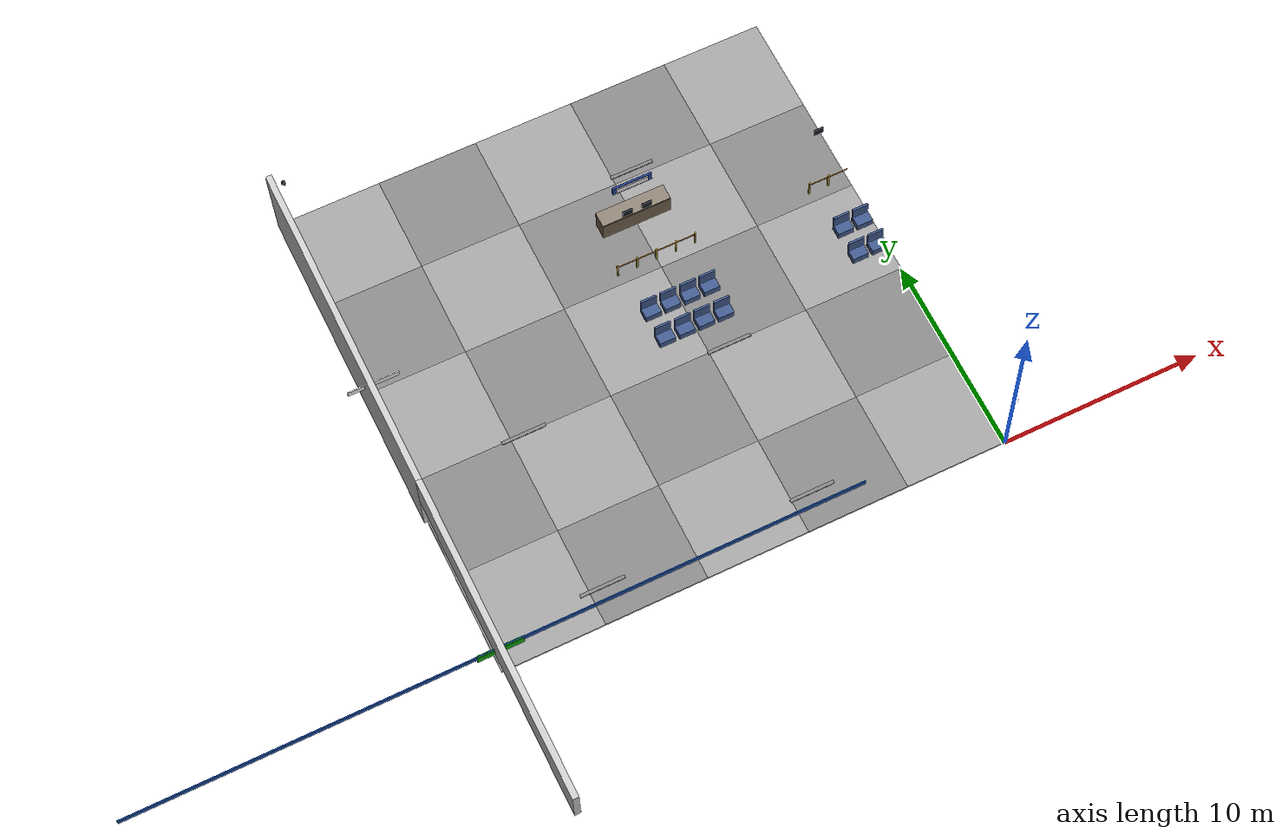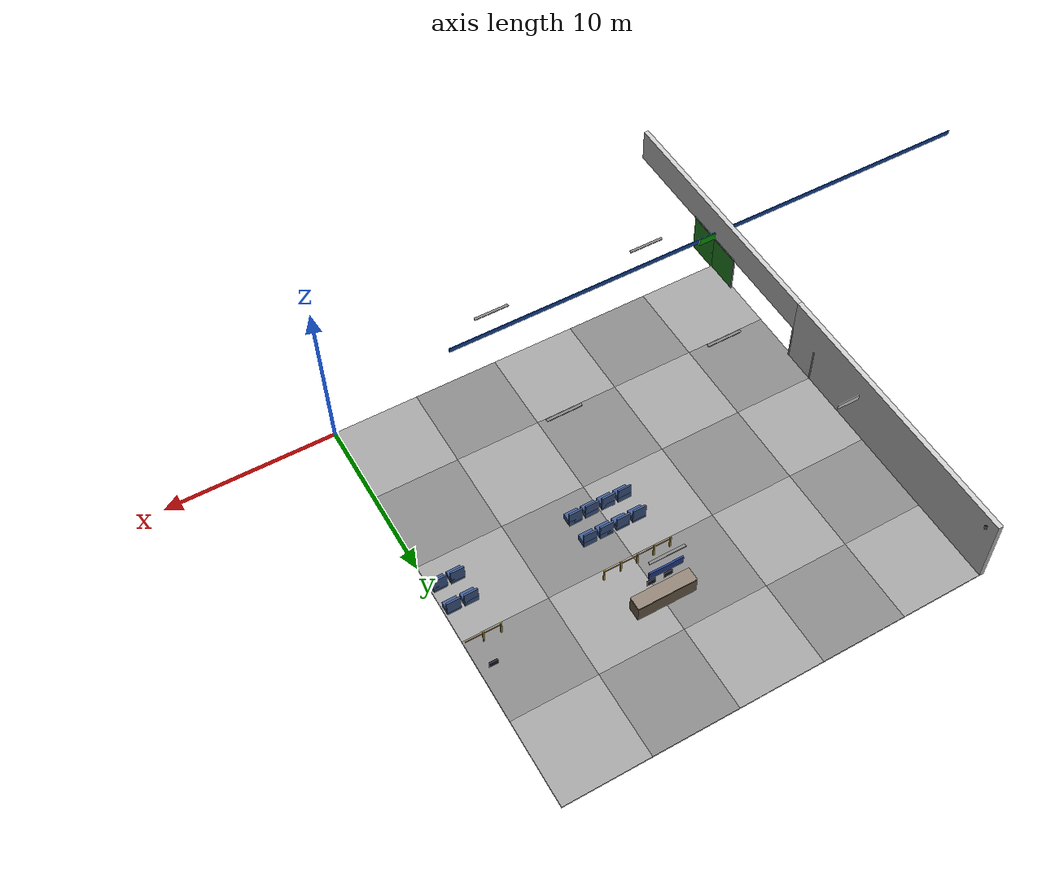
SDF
<sdf version="1.10">
 <world name="my_world">
  <model name="tile_0_5">
   <static>true</static>
   <pose>-22.5 2.5 0.05 0 0 0</pose>
   <link name="link">
    <collision name="col">
     <geometry><box><size>5 5 0.1</size></box></geometry>
     <surface><friction><ode><mu>0.8</mu><mu2>0.8</mu2></ode></friction></surface>
    </collision>
    <visual name="vis">
     <geometry><box><size>5 5 0.1</size></box></geometry>
     <material><ambient>0.62 0.62 0.62 1</ambient><diffuse>0.62 0.62 0.62 1</diffuse></material>
    </visual>
   </link>
  </model>
  <model name="tile_0_6">
   <static>true</static>
   <pose>-22.5 7.5 0.05 0 0 0</pose>
   <link name="link">
    <collision name="col">
     <geometry><box><size>5 5 0.1</size></box></geometry>
     <surface><friction><ode><mu>0.8</mu><mu2>0.8</mu2></ode></friction></surface>
    </collision>
    <visual name="vis">
     <geometry><box><size>5 5 0.1</size></box></geometry>
     <material><ambient>0.52 0.52 0.52 1</ambient><diffuse>0.52 0.52 0.52 1</diffuse></material>
    </visual>
   </link>
  </model>
  <model name="tile_0_7">
   <static>true</static>
   <pose>-22.5 12.5 0.05 0 0 0</pose>
   <link name="link">
    <collision name="col">
     <geometry><box><size>5 5 0.1</size></box></geometry>
     <surface><friction><ode><mu>0.8</mu><mu2>0.8</mu2></ode></friction></surface>
    </collision>
    <visual name="vis">
     <geometry><box><size>5 5 0.1</size></box></geometry>
     <material><ambient>0.62 0.62 0.62 1</ambient><diffuse>0.62 0.62 0.62 1</diffuse></material>
    </visual>
   </link>
  </model>
  <model name="tile_0_8">
   <static>true</static>
   <pose>-22.5 17.5 0.05 0 0 0</pose>
   <link name="link">
    <collision name="col">
     <geometry><box><size>5 5 0.1</size></box></geometry>
     <surface><friction><ode><mu>0.8</mu><mu2>0.8</mu2></ode></friction></surface>
    </collision>
    <visual name="vis">
     <geometry><box><size>5 5 0.1</size></box></geometry>
     <material><ambient>0.52 0.52 0.52 1</ambient><diffuse>0.52 0.52 0.52 1</diffuse></material>
    </visual>
   </link>
  </model>
  <model name="tile_0_9">
   <static>true</static>
   <pose>-22.5 22.5 0.05 0 0 0</pose>
   <link name="link">
    <collision name="col">
     <geometry><box><size>5 5 0.1</size></box></geometry>
     <surface><friction><ode><mu>0.8</mu><mu2>0.8</mu2></ode></friction></surface>
    </collision>
    <visual name="vis">
     <geometry><box><size>5 5 0.1</size></box></geometry>
     <material><ambient>0.62 0.62 0.62 1</ambient><diffuse>0.62 0.62 0.62 1</diffuse></material>
    </visual>
   </link>
  </model>
  <model name="tile_1_5">
   <static>true</static>
   <pose>-17.5 2.5 0.05 0 0 0</pose>
   <link name="link">
    <collision name="col">
     <geometry><box><size>5 5 0.1</size></box></geometry>
     <surface><friction><ode><mu>0.8</mu><mu2>0.8</mu2></ode></friction></surface>
    </collision>
    <visual name="vis">
     <geometry><box><size>5 5 0.1</size></box></geometry>
     <material><ambient>0.52 0.52 0.52 1</ambient><diffuse>0.52 0.52 0.52 1</diffuse></material>
    </visual>
   </link>
  </model>
  <model name="tile_1_6">
   <static>true</static>
   <pose>-17.5 7.5 0.05 0 0 0</pose>
   <link name="link">
    <collision name="col">
     <geometry><box><size>5 5 0.1</size></box></geometry>
     <surface><friction><ode><mu>0.8</mu><mu2>0.8</mu2></ode></friction></surface>
    </collision>
    <visual name="vis">
     <geometry><box><size>5 5 0.1</size></box></geometry>
     <material><ambient>0.62 0.62 0.62 1</ambient><diffuse>0.62 0.62 0.62 1</diffuse></material>
    </visual>
   </link>
  </model>
  <model name="tile_1_7">
   <static>true</static>
   <pose>-17.5 12.5 0.05 0 0 0</pose>
   <link name="link">
    <collision name="col">
     <geometry><box><size>5 5 0.1</size></box></geometry>
     <surface><friction><ode><mu>0.8</mu><mu2>0.8</mu2></ode></friction></surface>
    </collision>
    <visual name="vis">
     <geometry><box><size>5 5 0.1</size></box></geometry>
     <material><ambient>0.52 0.52 0.52 1</ambient><diffuse>0.52 0.52 0.52 1</diffuse></material>
    </visual>
   </link>
  </model>
  <model name="tile_1_8">
   <static>true</static>
   <pose>-17.5 17.5 0.05 0 0 0</pose>
   <link name="link">
    <collision name="col">
     <geometry><box><size>5 5 0.1</size></box></geometry>
     <surface><friction><ode><mu>0.8</mu><mu2>0.8</mu2></ode></friction></surface>
    </collision>
    <visual name="vis">
     <geometry><box><size>5 5 0.1</size></box></geometry>
     <material><ambient>0.62 0.62 0.62 1</ambient><diffuse>0.62 0.62 0.62 1</diffuse></material>
    </visual>
   </link>
  </model>
  <model name="tile_1_9">
   <static>true</static>
   <pose>-17.5 22.5 0.05 0 0 0</pose>
   <link name="link">
    <collision name="col">
     <geometry><box><size>5 5 0.1</size></box></geometry>
     <surface><friction><ode><mu>0.8</mu><mu2>0.8</mu2></ode></friction></surface>
    </collision>
    <visual name="vis">
     <geometry><box><size>5 5 0.1</size></box></geometry>
     <material><ambient>0.52 0.52 0.52 1</ambient><diffuse>0.52 0.52 0.52 1</diffuse></material>
    </visual>
   </link>
  </model>
  <model name="tile_2_5">
   <static>true</static>
   <pose>-12.5 2.5 0.05 0 0 0</pose>
   <link name="link">
    <collision name="col">
     <geometry><box><size>5 5 0.1</size></box></geometry>
     <surface><friction><ode><mu>0.8</mu><mu2>0.8</mu2></ode></friction></surface>
    </collision>
    <visual name="vis">
     <geometry><box><size>5 5 0.1</size></box></geometry>
     <material><ambient>0.62 0.62 0.62 1</ambient><diffuse>0.62 0.62 0.62 1</diffuse></material>
    </visual>
   </link>
  </model>
  <model name="tile_2_6">
   <static>true</static>
   <pose>-12.5 7.5 0.05 0 0 0</pose>
   <link name="link">
    <collision name="col">
     <geometry><box><size>5 5 0.1</size></box></geometry>
     <surface><friction><ode><mu>0.8</mu><mu2>0.8</mu2></ode></friction></surface>
    </collision>
    <visual name="vis">
     <geometry><box><size>5 5 0.1</size></box></geometry>
     <material><ambient>0.52 0.52 0.52 1</ambient><diffuse>0.52 0.52 0.52 1</diffuse></material>
    </visual>
   </link>
  </model>
  <model name="tile_2_7">
   <static>true</static>
   <pose>-12.5 12.5 0.05 0 0 0</pose>
   <link name="link">
    <collision name="col">
     <geometry><box><size>5 5 0.1</size></box></geometry>
     <surface><friction><ode><mu>0.8</mu><mu2>0.8</mu2></ode></friction></surface>
    </collision>
    <visual name="vis">
     <geometry><box><size>5 5 0.1</size></box></geometry>
     <material><ambient>0.62 0.62 0.62 1</ambient><diffuse>0.62 0.62 0.62 1</diffuse></material>
    </visual>
   </link>
  </model>
  <model name="tile_2_8">
   <static>true</static>
   <pose>-12.5 17.5 0.05 0 0 0</pose>
   <link name="link">
    <collision name="col">
     <geometry><box><size>5 5 0.1</size></box></geometry>
     <surface><friction><ode><mu>0.8</mu><mu2>0.8</mu2></ode></friction></surface>
    </collision>
    <visual name="vis">
     <geometry><box><size>5 5 0.1</size></box></geometry>
     <material><ambient>0.52 0.52 0.52 1</ambient><diffuse>0.52 0.52 0.52 1</diffuse></material>
    </visual>
   </link>
  </model>
  <model name="tile_2_9">
   <static>true</static>
   <pose>-12.5 22.5 0.05 0 0 0</pose>
   <link name="link">
    <collision name="col">
     <geometry><box><size>5 5 0.1</size></box></geometry>
     <surface><friction><ode><mu>0.8</mu><mu2>0.8</mu2></ode></friction></surface>
    </collision>
    <visual name="vis">
     <geometry><box><size>5 5 0.1</size></box></geometry>
     <material><ambient>0.62 0.62 0.62 1</ambient><diffuse>0.62 0.62 0.62 1</diffuse></material>
    </visual>
   </link>
  </model>
  <model name="tile_3_5">
   <static>true</static>
   <pose>-7.5 2.5 0.05 0 0 0</pose>
   <link name="link">
    <collision name="col">
     <geometry><box><size>5 5 0.1</size></box></geometry>
     <surface><friction><ode><mu>0.8</mu><mu2>0.8</mu2></ode></friction></surface>
    </collision>
    <visual name="vis">
     <geometry><box><size>5 5 0.1</size></box></geometry>
     <material><ambient>0.52 0.52 0.52 1</ambient><diffuse>0.52 0.52 0.52 1</diffuse></material>
    </visual>
   </link>
  </model>
  <model name="tile_3_6">
   <static>true</static>
   <pose>-7.5 7.5 0.05 0 0 0</pose>
   <link name="link">
    <collision name="col">
     <geometry><box><size>5 5 0.1</size></box></geometry>
     <surface><friction><ode><mu>0.8</mu><mu2>0.8</mu2></ode></friction></surface>
    </collision>
    <visual name="vis">
     <geometry><box><size>5 5 0.1</size></box></geometry>
     <material><ambient>0.62 0.62 0.62 1</ambient><diffuse>0.62 0.62 0.62 1</diffuse></material>
    </visual>
   </link>
  </model>
  <model name="tile_3_7">
   <static>true</static>
   <pose>-7.5 12.5 0.05 0 0 0</pose>
   <link name="link">
    <collision name="col">
     <geometry><box><size>5 5 0.1</size></box></geometry>
     <surface><friction><ode><mu>0.8</mu><mu2>0.8</mu2></ode></friction></surface>
    </collision>
    <visual name="vis">
     <geometry><box><size>5 5 0.1</size></box></geometry>
     <material><ambient>0.52 0.52 0.52 1</ambient><diffuse>0.52 0.52 0.52 1</diffuse></material>
    </visual>
   </link>
  </model>
  <model name="tile_3_8">
   <static>true</static>
   <pose>-7.5 17.5 0.05 0 0 0</pose>
   <link name="link">
    <collision name="col">
     <geometry><box><size>5 5 0.1</size></box></geometry>
     <surface><friction><ode><mu>0.8</mu><mu2>0.8</mu2></ode></friction></surface>
    </collision>
    <visual name="vis">
     <geometry><box><size>5 5 0.1</size></box></geometry>
     <material><ambient>0.62 0.62 0.62 1</ambient><diffuse>0.62 0.62 0.62 1</diffuse></material>
    </visual>
   </link>
  </model>
  <model name="tile_3_9">
   <static>true</static>
   <pose>-7.5 22.5 0.05 0 0 0</pose>
   <link name="link">
    <collision name="col">
     <geometry><box><size>5 5 0.1</size></box></geometry>
     <surface><friction><ode><mu>0.8</mu><mu2>0.8</mu2></ode></friction></surface>
    </collision>
    <visual name="vis">
     <geometry><box><size>5 5 0.1</size></box></geometry>
     <material><ambient>0.52 0.52 0.52 1</ambient><diffuse>0.52 0.52 0.52 1</diffuse></material>
    </visual>
   </link>
  </model>
  <model name="tile_4_5">
   <static>true</static>
   <pose>-2.5 2.5 0.05 0 0 0</pose>
   <link name="link">
    <collision name="col">
     <geometry><box><size>5 5 0.1</size></box></geometry>
     <surface><friction><ode><mu>0.8</mu><mu2>0.8</mu2></ode></friction></surface>
    </collision>
    <visual name="vis">
     <geometry><box><size>5 5 0.1</size></box></geometry>
     <material><ambient>0.62 0.62 0.62 1</ambient><diffuse>0.62 0.62 0.62 1</diffuse></material>
    </visual>
   </link>
  </model>
  <model name="tile_4_6">
   <static>true</static>
   <pose>-2.5 7.5 0.05 0 0 0</pose>
   <link name="link">
    <collision name="col">
     <geometry><box><size>5 5 0.1</size></box></geometry>
     <surface><friction><ode><mu>0.8</mu><mu2>0.8</mu2></ode></friction></surface>
    </collision>
    <visual name="vis">
     <geometry><box><size>5 5 0.1</size></box></geometry>
     <material><ambient>0.52 0.52 0.52 1</ambient><diffuse>0.52 0.52 0.52 1</diffuse></material>
    </visual>
   </link>
  </model>
  <model name="tile_4_7">
   <static>true</static>
   <pose>-2.5 12.5 0.05 0 0 0</pose>
   <link name="link">
    <collision name="col">
     <geometry><box><size>5 5 0.1</size></box></geometry>
     <surface><friction><ode><mu>0.8</mu><mu2>0.8</mu2></ode></friction></surface>
    </collision>
    <visual name="vis">
     <geometry><box><size>5 5 0.1</size></box></geometry>
     <material><ambient>0.62 0.62 0.62 1</ambient><diffuse>0.62 0.62 0.62 1</diffuse></material>
    </visual>
   </link>
  </model>
  <model name="tile_4_8">
   <static>true</static>
   <pose>-2.5 17.5 0.05 0 0 0</pose>
   <link name="link">
    <collision name="col">
     <geometry><box><size>5 5 0.1</size></box></geometry>
     <surface><friction><ode><mu>0.8</mu><mu2>0.8</mu2></ode></friction></surface>
    </collision>
    <visual name="vis">
     <geometry><box><size>5 5 0.1</size></box></geometry>
     <material><ambient>0.52 0.52 0.52 1</ambient><diffuse>0.52 0.52 0.52 1</diffuse></material>
    </visual>
   </link>
  </model>
  <model name="tile_4_9">
   <static>true</static>
   <pose>-2.5 22.5 0.05 0 0 0</pose>
   <link name="link">
    <collision name="col">
     <geometry><box><size>5 5 0.1</size></box></geometry>
     <surface><friction><ode><mu>0.8</mu><mu2>0.8</mu2></ode></friction></surface>
    </collision>
    <visual name="vis">
     <geometry><box><size>5 5 0.1</size></box></geometry>
     <material><ambient>0.62 0.62 0.62 1</ambient><diffuse>0.62 0.62 0.62 1</diffuse></material>
    </visual>
   </link>
  </model>
  <model name="wall_west_n">
   <static>true</static>
   <pose>-25 16.5 2.25 0 0 0</pose>
   <link name="link">
    <collision name="col"><geometry><box><size>0.3 17 4.5</size></box></geometry></collision>
    <visual name="vis">
     <geometry><box><size>0.3 17 4.5</size></box></geometry>
     <material><ambient>0.78 0.78 0.78 1</ambient><diffuse>0.78 0.78 0.78 1</diffuse></material>
    </visual>
   </link>
  </model>
  <model name="wall_west_top">
   <static>true</static>
   <pose>-25 0 3.45 0 0 0</pose>
   <link name="link">
    <collision name="col"><geometry><box><size>0.3 16 2.1</size></box></geometry></collision>
    <visual name="vis">
     <geometry><box><size>0.3 16 2.1</size></box></geometry>
     <material><ambient>0.78 0.78 0.78 1</ambient><diffuse>0.78 0.78 0.78 1</diffuse></material>
    </visual>
   </link>
  </model>
  <model name="exit_west_door_l">
   <static>true</static>
   <pose>-24.87 -1.0 1.2 0 0 0</pose>
   <link name="link">
    <collision name="col"><geometry><box><size>0.06 2.0 2.4</size></box></geometry></collision>
    <visual name="vis">
     <geometry><box><size>0.06 2.0 2.4</size></box></geometry>
     <material><ambient>0.15 0.55 0.15 1</ambient><diffuse>0.15 0.55 0.15 1</diffuse></material>
    </visual>
   </link>
  </model>
  <model name="exit_west_door_r">
   <static>true</static>
   <pose>-24.87 1.0 1.2 0 0 0</pose>
   <link name="link">
    <collision name="col"><geometry><box><size>0.06 2.0 2.4</size></box></geometry></collision>
    <visual name="vis">
     <geometry><box><size>0.06 2.0 2.4</size></box></geometry>
     <material><ambient>0.15 0.55 0.15 1</ambient><diffuse>0.15 0.55 0.15 1</diffuse></material>
    </visual>
   </link>
  </model>
  <model name="exit_west_handle_l">
   <static>true</static>
   <pose>-24.87 -0.1 1.1 0 0 0</pose>
   <link name="link">
    <visual name="vis">
     <geometry><box><size>0.08 0.06 0.06</size></box></geometry>
     <material><ambient>0.7 0.6 0.1 1</ambient><diffuse>0.7 0.6 0.1 1</diffuse></material>
    </visual>
   </link>
  </model>
  <model name="exit_west_handle_r">
   <static>true</static>
   <pose>-24.87 0.1 1.1 0 0 0</pose>
   <link name="link">
    <visual name="vis">
     <geometry><box><size>0.08 0.06 0.06</size></box></geometry>
     <material><ambient>0.7 0.6 0.1 1</ambient><diffuse>0.7 0.6 0.1 1</diffuse></material>
    </visual>
   </link>
  </model>
  <model name="exit_west_sign">
   <static>true</static>
   <pose>-24.87 0 2.7 0 0 0</pose>
   <link name="link">
    <visual name="vis">
     <geometry><box><size>2.2 0.12 0.45</size></box></geometry>
     <material><ambient>0.05 0.65 0.05 1</ambient><diffuse>0.05 0.65 0.05 1</diffuse></material>
    </visual>
   </link>
  </model>
  <model name="exit_west_sign_txt">
   <static>true</static>
   <pose>-24.87 0 2.7 0 0 0</pose>
   <link name="link">
    <visual name="vis">
     <geometry><box><size>1.8 0.05 0.28</size></box></geometry>
     <material><ambient>0.92 0.92 0.92 1</ambient><diffuse>0.92 0.92 0.92 1</diffuse></material>
    </visual>
   </link>
  </model>
  <model name="exit_west_frame_r">
   <static>true</static>
   <pose>-24.87 2.05 1.2 0 0 0</pose>
   <link name="link">
    <collision name="col"><geometry><box><size>0.06 0.1 2.4</size></box></geometry></collision>
    <visual name="vis">
     <geometry><box><size>0.06 0.1 2.4</size></box></geometry>
     <material><ambient>0.6 0.6 0.6 1</ambient><diffuse>0.6 0.6 0.6 1</diffuse></material>
    </visual>
   </link>
  </model>
  <model name="exit_west_frame_t">
   <static>true</static>
   <pose>-24.87 0 2.45 0 0 0</pose>
   <link name="link">
    <visual name="vis">
     <geometry><box><size>0.06 4.2 0.1</size></box></geometry>
     <material><ambient>0.6 0.6 0.6 1</ambient><diffuse>0.6 0.6 0.6 1</diffuse></material>
    </visual>
   </link>
  </model>
  <model name="entrance_frame_s">
   <static>true</static>
   <pose>-24.87 10 1.2 0 0 0</pose>
   <link name="link">
    <collision name="col"><geometry><box><size>0.06 0.1 2.4</size></box></geometry></collision>
    <visual name="vis">
     <geometry><box><size>0.06 0.1 2.4</size></box></geometry>
     <material><ambient>0.6 0.6 0.6 1</ambient><diffuse>0.6 0.6 0.6 1</diffuse></material>
    </visual>
   </link>
  </model>
  <model name="entrance_frame_n">
   <static>true</static>
   <pose>-24.87 8 1.2 0 0 0</pose>
   <link name="link">
    <collision name="col"><geometry><box><size>0.06 0.1 2.4</size></box></geometry></collision>
    <visual name="vis">
     <geometry><box><size>0.06 0.1 2.4</size></box></geometry>
     <material><ambient>0.6 0.6 0.6 1</ambient><diffuse>0.6 0.6 0.6 1</diffuse></material>
    </visual>
   </link>
  </model>
  <model name="entrance_sign">
   <static>true</static>
   <pose>-24.78 0 2.8 0 0 0</pose>
   <link name="link">
    <visual name="vis">
     <geometry><box><size>35.0 0.05 0.3</size></box></geometry>
     <material><ambient>0.1 0.3 0.65 1</ambient><diffuse>0.1 0.3 0.65 1</diffuse></material>
    </visual>
   </link>
  </model>
  <model name="entrance_sign_text">
   <static>true</static>
   <pose>-24.72 14 2.8 0 0 0</pose>
   <link name="link">
    <visual name="vis">
     <geometry><box><size>2.5 0.05 0.3</size></box></geometry>
     <material><ambient>0.92 0.92 0.92 1</ambient><diffuse>0.92 0.92 0.92 1</diffuse></material>
    </visual>
   </link>
  </model>
  <model name="gate_a1_counter">
   <static>true</static>
   <pose>-10 18 0.55 0 0 0</pose>
   <link name="link">
    <collision name="col"><geometry><box><size>3.5 0.8 1.1</size></box></geometry></collision>
    <visual name="vis">
     <geometry><box><size>3.5 0.8 1.1</size></box></geometry>
     <material><ambient>0.45 0.38 0.3 1</ambient><diffuse>0.45 0.38 0.3 1</diffuse></material>
    </visual>
   </link>
  </model>
  <model name="gate_a1_counter_top">
   <static>true</static>
   <pose>-10 18 1.15 0 0 0</pose>
   <link name="link">
    <collision name="col"><geometry><box><size>3.5 0.8 0.08</size></box></geometry></collision>
    <visual name="vis">
     <geometry><box><size>3.5 0.8 0.08</size></box></geometry>
     <material><ambient>0.55 0.5 0.45 1</ambient><diffuse>0.55 0.5 0.45 1</diffuse></material>
    </visual>
   </link>
  </model>
  <model name="gate_a1_monitor">
   <static>true</static>
   <pose>-10.5 17.55 1.6 0 0 0</pose>
   <link name="link">
    <visual name="vis">
     <geometry><box><size>0.5 0.05 0.4</size></box></geometry>
     <material><ambient>0.1 0.1 0.15 1</ambient><diffuse>0.1 0.1 0.15 1</diffuse></material>
    </visual>
   </link>
  </model>
  <model name="gate_a1_monitor2">
   <static>true</static>
   <pose>-9.5 17.55 1.6 0 0 0</pose>
   <link name="link">
    <visual name="vis">
     <geometry><box><size>0.5 0.05 0.4</size></box></geometry>
     <material><ambient>0.1 0.1 0.15 1</ambient><diffuse>0.1 0.1 0.15 1</diffuse></material>
    </visual>
   </link>
  </model>
  <model name="gate_a1_sign">
   <static>true</static>
   <pose>-10 18 3.2 0 0 0</pose>
   <link name="link">
    <visual name="vis">
     <geometry><box><size>2.0 0.1 0.5</size></box></geometry>
     <material><ambient>0.15 0.25 0.55 1</ambient><diffuse>0.15 0.25 0.55 1</diffuse></material>
    </visual>
   </link>
  </model>
  <model name="gate_a1_sign_text">
   <static>true</static>
   <pose>-10 17.94 3.2 0 0 0</pose>
   <link name="link">
    <visual name="vis">
     <geometry><box><size>1.6 0.05 0.3</size></box></geometry>
     <material><ambient>0.9 0.9 0.9 1</ambient><diffuse>0.9 0.9 0.9 1</diffuse></material>
    </visual>
   </link>
  </model>
  <model name="gate_a1_post_-20">
   <static>true</static>
   <pose>-12.0 15.5 0.5 0 0 0</pose>
   <link name="link">
    <collision name="col"><geometry><box><size>0.08 0.08 1.0</size></box></geometry></collision>
    <visual name="vis">
     <geometry><box><size>0.08 0.08 1.0</size></box></geometry>
     <material><ambient>0.7 0.6 0.2 1</ambient><diffuse>0.7 0.6 0.2 1</diffuse></material>
    </visual>
   </link>
  </model>
  <model name="gate_a1_post_-10">
   <static>true</static>
   <pose>-11.0 15.5 0.5 0 0 0</pose>
   <link name="link">
    <collision name="col"><geometry><box><size>0.08 0.08 1.0</size></box></geometry></collision>
    <visual name="vis">
     <geometry><box><size>0.08 0.08 1.0</size></box></geometry>
     <material><ambient>0.7 0.6 0.2 1</ambient><diffuse>0.7 0.6 0.2 1</diffuse></material>
    </visual>
   </link>
  </model>
  <model name="gate_a1_post_0">
   <static>true</static>
   <pose>-10.0 15.5 0.5 0 0 0</pose>
   <link name="link">
    <collision name="col"><geometry><box><size>0.08 0.08 1.0</size></box></geometry></collision>
    <visual name="vis">
     <geometry><box><size>0.08 0.08 1.0</size></box></geometry>
     <material><ambient>0.7 0.6 0.2 1</ambient><diffuse>0.7 0.6 0.2 1</diffuse></material>
    </visual>
   </link>
  </model>
  <model name="gate_a1_post_10">
   <static>true</static>
   <pose>-9.0 15.5 0.5 0 0 0</pose>
   <link name="link">
    <collision name="col"><geometry><box><size>0.08 0.08 1.0</size></box></geometry></collision>
    <visual name="vis">
     <geometry><box><size>0.08 0.08 1.0</size></box></geometry>
     <material><ambient>0.7 0.6 0.2 1</ambient><diffuse>0.7 0.6 0.2 1</diffuse></material>
    </visual>
   </link>
  </model>
  <model name="gate_a1_post_20">
   <static>true</static>
   <pose>-8.0 15.5 0.5 0 0 0</pose>
   <link name="link">
    <collision name="col"><geometry><box><size>0.08 0.08 1.0</size></box></geometry></collision>
    <visual name="vis">
     <geometry><box><size>0.08 0.08 1.0</size></box></geometry>
     <material><ambient>0.7 0.6 0.2 1</ambient><diffuse>0.7 0.6 0.2 1</diffuse></material>
    </visual>
   </link>
  </model>
  <model name="gate_a1_rope_0">
   <static>true</static>
   <pose>-11.5 15.5 0.85 0 0 0</pose>
   <link name="link">
    <visual name="vis">
     <geometry><box><size>1.0 0.04 0.04</size></box></geometry>
     <material><ambient>0.6 0.4 0.1 1</ambient><diffuse>0.6 0.4 0.1 1</diffuse></material>
    </visual>
   </link>
  </model>
  <model name="gate_a1_rope_1">
   <static>true</static>
   <pose>-10.5 15.5 0.85 0 0 0</pose>
   <link name="link">
    <visual name="vis">
     <geometry><box><size>1.0 0.04 0.04</size></box></geometry>
     <material><ambient>0.6 0.4 0.1 1</ambient><diffuse>0.6 0.4 0.1 1</diffuse></material>
    </visual>
   </link>
  </model>
  <model name="gate_a1_rope_2">
   <static>true</static>
   <pose>-9.5 15.5 0.85 0 0 0</pose>
   <link name="link">
    <visual name="vis">
     <geometry><box><size>1.0 0.04 0.04</size></box></geometry>
     <material><ambient>0.6 0.4 0.1 1</ambient><diffuse>0.6 0.4 0.1 1</diffuse></material>
    </visual>
   </link>
  </model>
  <model name="gate_a1_rope_3">
   <static>true</static>
   <pose>-8.5 15.5 0.85 0 0 0</pose>
   <link name="link">
    <visual name="vis">
     <geometry><box><size>1.0 0.04 0.04</size></box></geometry>
     <material><ambient>0.6 0.4 0.1 1</ambient><diffuse>0.6 0.4 0.1 1</diffuse></material>
    </visual>
   </link>
  </model>
  <model name="gate_a1_seat_r0_c0">
   <static>true</static>
   <pose>-11.5 13 0.25 0 0 0</pose>
   <link name="link">
    <collision name="col"><geometry><box><size>0.8 0.6 0.5</size></box></geometry></collision>
    <visual name="vis">
     <geometry><box><size>0.8 0.6 0.5</size></box></geometry>
     <material><ambient>0.25 0.35 0.55 1</ambient><diffuse>0.25 0.35 0.55 1</diffuse></material>
    </visual>
   </link>
  </model>
  <model name="gate_a1_seat_r0_c0_back">
   <static>true</static>
   <pose>-11.5 13.25 0.7 0 0 0</pose>
   <link name="link">
    <collision name="col"><geometry><box><size>0.8 0.1 0.9</size></box></geometry></collision>
    <visual name="vis">
     <geometry><box><size>0.8 0.1 0.9</size></box></geometry>
     <material><ambient>0.25 0.35 0.55 1</ambient><diffuse>0.25 0.35 0.55 1</diffuse></material>
    </visual>
   </link>
  </model>
  <model name="gate_a1_seat_r0_c1">
   <static>true</static>
   <pose>-10.5 13 0.25 0 0 0</pose>
   <link name="link">
    <collision name="col"><geometry><box><size>0.8 0.6 0.5</size></box></geometry></collision>
    <visual name="vis">
     <geometry><box><size>0.8 0.6 0.5</size></box></geometry>
     <material><ambient>0.25 0.35 0.55 1</ambient><diffuse>0.25 0.35 0.55 1</diffuse></material>
    </visual>
   </link>
  </model>
  <model name="gate_a1_seat_r0_c1_back">
   <static>true</static>
   <pose>-10.5 13.25 0.7 0 0 0</pose>
   <link name="link">
    <collision name="col"><geometry><box><size>0.8 0.1 0.9</size></box></geometry></collision>
    <visual name="vis">
     <geometry><box><size>0.8 0.1 0.9</size></box></geometry>
     <material><ambient>0.25 0.35 0.55 1</ambient><diffuse>0.25 0.35 0.55 1</diffuse></material>
    </visual>
   </link>
  </model>
  <model name="gate_a1_seat_r0_c2">
   <static>true</static>
   <pose>-9.5 13 0.25 0 0 0</pose>
   <link name="link">
    <collision name="col"><geometry><box><size>0.8 0.6 0.5</size></box></geometry></collision>
    <visual name="vis">
     <geometry><box><size>0.8 0.6 0.5</size></box></geometry>
     <material><ambient>0.25 0.35 0.55 1</ambient><diffuse>0.25 0.35 0.55 1</diffuse></material>
    </visual>
   </link>
  </model>
  <model name="gate_a1_seat_r0_c2_back">
   <static>true</static>
   <pose>-9.5 13.25 0.7 0 0 0</pose>
   <link name="link">
    <collision name="col"><geometry><box><size>0.8 0.1 0.9</size></box></geometry></collision>
    <visual name="vis">
     <geometry><box><size>0.8 0.1 0.9</size></box></geometry>
     <material><ambient>0.25 0.35 0.55 1</ambient><diffuse>0.25 0.35 0.55 1</diffuse></material>
    </visual>
   </link>
  </model>
  <model name="gate_a1_seat_r0_c3">
   <static>true</static>
   <pose>-8.5 13 0.25 0 0 0</pose>
   <link name="link">
    <collision name="col"><geometry><box><size>0.8 0.6 0.5</size></box></geometry></collision>
    <visual name="vis">
     <geometry><box><size>0.8 0.6 0.5</size></box></geometry>
     <material><ambient>0.25 0.35 0.55 1</ambient><diffuse>0.25 0.35 0.55 1</diffuse></material>
    </visual>
   </link>
  </model>
  <model name="gate_a1_seat_r0_c3_back">
   <static>true</static>
   <pose>-8.5 13.25 0.7 0 0 0</pose>
   <link name="link">
    <collision name="col"><geometry><box><size>0.8 0.1 0.9</size></box></geometry></collision>
    <visual name="vis">
     <geometry><box><size>0.8 0.1 0.9</size></box></geometry>
     <material><ambient>0.25 0.35 0.55 1</ambient><diffuse>0.25 0.35 0.55 1</diffuse></material>
    </visual>
   </link>
  </model>
  <model name="gate_a1_seat_r1_c0">
   <static>true</static>
   <pose>-11.5 11.5 0.25 0 0 0</pose>
   <link name="link">
    <collision name="col"><geometry><box><size>0.8 0.6 0.5</size></box></geometry></collision>
    <visual name="vis">
     <geometry><box><size>0.8 0.6 0.5</size></box></geometry>
     <material><ambient>0.25 0.35 0.55 1</ambient><diffuse>0.25 0.35 0.55 1</diffuse></material>
    </visual>
   </link>
  </model>
  <model name="gate_a1_seat_r1_c0_back">
   <static>true</static>
   <pose>-11.5 11.75 0.7 0 0 0</pose>
   <link name="link">
    <collision name="col"><geometry><box><size>0.8 0.1 0.9</size></box></geometry></collision>
    <visual name="vis">
     <geometry><box><size>0.8 0.1 0.9</size></box></geometry>
     <material><ambient>0.25 0.35 0.55 1</ambient><diffuse>0.25 0.35 0.55 1</diffuse></material>
    </visual>
   </link>
  </model>
  <model name="gate_a1_seat_r1_c1">
   <static>true</static>
   <pose>-10.5 11.5 0.25 0 0 0</pose>
   <link name="link">
    <collision name="col"><geometry><box><size>0.8 0.6 0.5</size></box></geometry></collision>
    <visual name="vis">
     <geometry><box><size>0.8 0.6 0.5</size></box></geometry>
     <material><ambient>0.25 0.35 0.55 1</ambient><diffuse>0.25 0.35 0.55 1</diffuse></material>
    </visual>
   </link>
  </model>
  <model name="gate_a1_seat_r1_c1_back">
   <static>true</static>
   <pose>-10.5 11.75 0.7 0 0 0</pose>
   <link name="link">
    <collision name="col"><geometry><box><size>0.8 0.1 0.9</size></box></geometry></collision>
    <visual name="vis">
     <geometry><box><size>0.8 0.1 0.9</size></box></geometry>
     <material><ambient>0.25 0.35 0.55 1</ambient><diffuse>0.25 0.35 0.55 1</diffuse></material>
    </visual>
   </link>
  </model>
  <model name="gate_a1_seat_r1_c2">
   <static>true</static>
   <pose>-9.5 11.5 0.25 0 0 0</pose>
   <link name="link">
    <collision name="col"><geometry><box><size>0.8 0.6 0.5</size></box></geometry></collision>
    <visual name="vis">
     <geometry><box><size>0.8 0.6 0.5</size></box></geometry>
     <material><ambient>0.25 0.35 0.55 1</ambient><diffuse>0.25 0.35 0.55 1</diffuse></material>
    </visual>
   </link>
  </model>
  <model name="gate_a1_seat_r1_c2_back">
   <static>true</static>
   <pose>-9.5 11.75 0.7 0 0 0</pose>
   <link name="link">
    <collision name="col"><geometry><box><size>0.8 0.1 0.9</size></box></geometry></collision>
    <visual name="vis">
     <geometry><box><size>0.8 0.1 0.9</size></box></geometry>
     <material><ambient>0.25 0.35 0.55 1</ambient><diffuse>0.25 0.35 0.55 1</diffuse></material>
    </visual>
   </link>
  </model>
  <model name="gate_a1_seat_r1_c3">
   <static>true</static>
   <pose>-8.5 11.5 0.25 0 0 0</pose>
   <link name="link">
    <collision name="col"><geometry><box><size>0.8 0.6 0.5</size></box></geometry></collision>
    <visual name="vis">
     <geometry><box><size>0.8 0.6 0.5</size></box></geometry>
     <material><ambient>0.25 0.35 0.55 1</ambient><diffuse>0.25 0.35 0.55 1</diffuse></material>
    </visual>
   </link>
  </model>
  <model name="gate_a1_seat_r1_c3_back">
   <static>true</static>
   <pose>-8.5 11.75 0.7 0 0 0</pose>
   <link name="link">
    <collision name="col"><geometry><box><size>0.8 0.1 0.9</size></box></geometry></collision>
    <visual name="vis">
     <geometry><box><size>0.8 0.1 0.9</size></box></geometry>
     <material><ambient>0.25 0.35 0.55 1</ambient><diffuse>0.25 0.35 0.55 1</diffuse></material>
    </visual>
   </link>
  </model>
  <model name="gate_a2_monitor">
   <static>true</static>
   <pose>-0.5 17.55 1.6 0 0 0</pose>
   <link name="link">
    <visual name="vis">
     <geometry><box><size>0.5 0.05 0.4</size></box></geometry>
     <material><ambient>0.1 0.1 0.15 1</ambient><diffuse>0.1 0.1 0.15 1</diffuse></material>
    </visual>
   </link>
  </model>
  <model name="gate_a2_post_-20">
   <static>true</static>
   <pose>-2.0 15.5 0.5 0 0 0</pose>
   <link name="link">
    <collision name="col"><geometry><box><size>0.08 0.08 1.0</size></box></geometry></collision>
    <visual name="vis">
     <geometry><box><size>0.08 0.08 1.0</size></box></geometry>
     <material><ambient>0.7 0.6 0.2 1</ambient><diffuse>0.7 0.6 0.2 1</diffuse></material>
    </visual>
   </link>
  </model>
  <model name="gate_a2_post_-10">
   <static>true</static>
   <pose>-1.0 15.5 0.5 0 0 0</pose>
   <link name="link">
    <collision name="col"><geometry><box><size>0.08 0.08 1.0</size></box></geometry></collision>
    <visual name="vis">
     <geometry><box><size>0.08 0.08 1.0</size></box></geometry>
     <material><ambient>0.7 0.6 0.2 1</ambient><diffuse>0.7 0.6 0.2 1</diffuse></material>
    </visual>
   </link>
  </model>
  <model name="gate_a2_rope_0">
   <static>true</static>
   <pose>-1.5 15.5 0.85 0 0 0</pose>
   <link name="link">
    <visual name="vis">
     <geometry><box><size>1.0 0.04 0.04</size></box></geometry>
     <material><ambient>0.6 0.4 0.1 1</ambient><diffuse>0.6 0.4 0.1 1</diffuse></material>
    </visual>
   </link>
  </model>
  <model name="gate_a2_rope_1">
   <static>true</static>
   <pose>-0.5 15.5 0.85 0 0 0</pose>
   <link name="link">
    <visual name="vis">
     <geometry><box><size>1.0 0.04 0.04</size></box></geometry>
     <material><ambient>0.6 0.4 0.1 1</ambient><diffuse>0.6 0.4 0.1 1</diffuse></material>
    </visual>
   </link>
  </model>
  <model name="gate_a2_seat_r0_c0">
   <static>true</static>
   <pose>-1.5 13 0.25 0 0 0</pose>
   <link name="link">
    <collision name="col"><geometry><box><size>0.8 0.6 0.5</size></box></geometry></collision>
    <visual name="vis">
     <geometry><box><size>0.8 0.6 0.5</size></box></geometry>
     <material><ambient>0.25 0.35 0.55 1</ambient><diffuse>0.25 0.35 0.55 1</diffuse></material>
    </visual>
   </link>
  </model>
  <model name="gate_a2_seat_r0_c0_back">
   <static>true</static>
   <pose>-1.5 13.25 0.7 0 0 0</pose>
   <link name="link">
    <collision name="col"><geometry><box><size>0.8 0.1 0.9</size></box></geometry></collision>
    <visual name="vis">
     <geometry><box><size>0.8 0.1 0.9</size></box></geometry>
     <material><ambient>0.25 0.35 0.55 1</ambient><diffuse>0.25 0.35 0.55 1</diffuse></material>
    </visual>
   </link>
  </model>
  <model name="gate_a2_seat_r0_c1">
   <static>true</static>
   <pose>-0.5 13 0.25 0 0 0</pose>
   <link name="link">
    <collision name="col"><geometry><box><size>0.8 0.6 0.5</size></box></geometry></collision>
    <visual name="vis">
     <geometry><box><size>0.8 0.6 0.5</size></box></geometry>
     <material><ambient>0.25 0.35 0.55 1</ambient><diffuse>0.25 0.35 0.55 1</diffuse></material>
    </visual>
   </link>
  </model>
  <model name="gate_a2_seat_r0_c1_back">
   <static>true</static>
   <pose>-0.5 13.25 0.7 0 0 0</pose>
   <link name="link">
    <collision name="col"><geometry><box><size>0.8 0.1 0.9</size></box></geometry></collision>
    <visual name="vis">
     <geometry><box><size>0.8 0.1 0.9</size></box></geometry>
     <material><ambient>0.25 0.35 0.55 1</ambient><diffuse>0.25 0.35 0.55 1</diffuse></material>
    </visual>
   </link>
  </model>
  <model name="gate_a2_seat_r1_c0">
   <static>true</static>
   <pose>-1.5 11.5 0.25 0 0 0</pose>
   <link name="link">
    <collision name="col"><geometry><box><size>0.8 0.6 0.5</size></box></geometry></collision>
    <visual name="vis">
     <geometry><box><size>0.8 0.6 0.5</size></box></geometry>
     <material><ambient>0.25 0.35 0.55 1</ambient><diffuse>0.25 0.35 0.55 1</diffuse></material>
    </visual>
   </link>
  </model>
  <model name="gate_a2_seat_r1_c0_back">
   <static>true</static>
   <pose>-1.5 11.75 0.7 0 0 0</pose>
   <link name="link">
    <collision name="col"><geometry><box><size>0.8 0.1 0.9</size></box></geometry></collision>
    <visual name="vis">
     <geometry><box><size>0.8 0.1 0.9</size></box></geometry>
     <material><ambient>0.25 0.35 0.55 1</ambient><diffuse>0.25 0.35 0.55 1</diffuse></material>
    </visual>
   </link>
  </model>
  <model name="gate_a2_seat_r1_c1">
   <static>true</static>
   <pose>-0.5 11.5 0.25 0 0 0</pose>
   <link name="link">
    <collision name="col"><geometry><box><size>0.8 0.6 0.5</size></box></geometry></collision>
    <visual name="vis">
     <geometry><box><size>0.8 0.6 0.5</size></box></geometry>
     <material><ambient>0.25 0.35 0.55 1</ambient><diffuse>0.25 0.35 0.55 1</diffuse></material>
    </visual>
   </link>
  </model>
  <model name="gate_a2_seat_r1_c1_back">
   <static>true</static>
   <pose>-0.5 11.75 0.7 0 0 0</pose>
   <link name="link">
    <collision name="col"><geometry><box><size>0.8 0.1 0.9</size></box></geometry></collision>
    <visual name="vis">
     <geometry><box><size>0.8 0.1 0.9</size></box></geometry>
     <material><ambient>0.25 0.35 0.55 1</ambient><diffuse>0.25 0.35 0.55 1</diffuse></material>
    </visual>
   </link>
  </model>
  <model name="lamp_b_n20_strip">
   <static>true</static>
   <pose>-20 0 4.42 0 0 0</pose>
   <link name="link">
    <visual name="strip">
     <geometry><box><size>2.0 0.12 0.04</size></box></geometry>
     <material>
      <ambient>0.95 0.95 0.88 1</ambient>
      <diffuse>0.95 0.95 0.88 1</diffuse>
      <emissive>0.35 0.35 0.30 1</emissive>
     </material>
    </visual>
    <visual name="housing">
     <pose>0 0 0.03 0 0 0</pose>
     <geometry><box><size>2.1 0.16 0.06</size></box></geometry>
     <material><ambient>0.5 0.5 0.5 1</ambient><diffuse>0.5 0.5 0.5 1</diffuse></material>
    </visual>
   </link>
  </model>
  <model name="lamp_b_n10_strip">
   <static>true</static>
   <pose>-10 0 4.42 0 0 0</pose>
   <link name="link">
    <visual name="strip">
     <geometry><box><size>2.0 0.12 0.04</size></box></geometry>
     <material>
      <ambient>0.95 0.95 0.88 1</ambient>
      <diffuse>0.95 0.95 0.88 1</diffuse>
      <emissive>0.35 0.35 0.30 1</emissive>
     </material>
    </visual>
    <visual name="housing">
     <pose>0 0 0.03 0 0 0</pose>
     <geometry><box><size>2.1 0.16 0.06</size></box></geometry>
     <material><ambient>0.5 0.5 0.5 1</ambient><diffuse>0.5 0.5 0.5 1</diffuse></material>
    </visual>
   </link>
  </model>
  <model name="lamp_c_n20_strip">
   <static>true</static>
   <pose>-20 8 4.42 0 0 0</pose>
   <link name="link">
    <visual name="strip">
     <geometry><box><size>2.0 0.12 0.04</size></box></geometry>
     <material>
      <ambient>0.95 0.95 0.88 1</ambient>
      <diffuse>0.95 0.95 0.88 1</diffuse>
      <emissive>0.35 0.35 0.30 1</emissive>
     </material>
    </visual>
    <visual name="housing">
     <pose>0 0 0.03 0 0 0</pose>
     <geometry><box><size>2.1 0.16 0.06</size></box></geometry>
     <material><ambient>0.5 0.5 0.5 1</ambient><diffuse>0.5 0.5 0.5 1</diffuse></material>
    </visual>
   </link>
  </model>
  <model name="lamp_c_n10_strip">
   <static>true</static>
   <pose>-10 8 4.42 0 0 0</pose>
   <link name="link">
    <visual name="strip">
     <geometry><box><size>2.0 0.12 0.04</size></box></geometry>
     <material>
      <ambient>0.95 0.95 0.88 1</ambient>
      <diffuse>0.95 0.95 0.88 1</diffuse>
      <emissive>0.35 0.35 0.30 1</emissive>
     </material>
    </visual>
    <visual name="housing">
     <pose>0 0 0.03 0 0 0</pose>
     <geometry><box><size>2.1 0.16 0.06</size></box></geometry>
     <material><ambient>0.5 0.5 0.5 1</ambient><diffuse>0.5 0.5 0.5 1</diffuse></material>
    </visual>
   </link>
  </model>
  <model name="lamp_gate_n10_strip">
   <static>true</static>
   <pose>-10 18 4.42 0 0 0</pose>
   <link name="link">
    <visual name="strip">
     <geometry><box><size>2.0 0.12 0.04</size></box></geometry>
     <material>
      <ambient>0.95 0.95 0.88 1</ambient>
      <diffuse>0.95 0.95 0.88 1</diffuse>
      <emissive>0.35 0.35 0.30 1</emissive>
     </material>
    </visual>
    <visual name="housing">
     <pose>0 0 0.03 0 0 0</pose>
     <geometry><box><size>2.1 0.16 0.06</size></box></geometry>
     <material><ambient>0.5 0.5 0.5 1</ambient><diffuse>0.5 0.5 0.5 1</diffuse></material>
    </visual>
   </link>
  </model>
  <model name="camera_nw_mount">
   <static>true</static>
   <pose>-24.5 24.5 4.3 0 0 0</pose>
   <link name="link">
    <visual name="vis">
     <geometry><box><size>0.15 0.15 0.08</size></box></geometry>
     <material><ambient>0.1 0.1 0.1 1</ambient><diffuse>0.1 0.1 0.1 1</diffuse></material>
    </visual>
   </link>
  </model>
  <model name="camera_nw_body">
   <static>true</static>
   <pose>-24.5 24.5 4.15 0 1.6 2.356</pose>
   <link name="link">
    <visual name="vis">
     <geometry><cylinder><radius>0.05</radius><length>0.16</length></cylinder></geometry>
     <material><ambient>0.12 0.12 0.12 1</ambient><diffuse>0.12 0.12 0.12 1</diffuse></material>
    </visual>
    <sensor name="camera_nw" type="camera">
     <pose>0 0 0 0 1.5708 0</pose>
     <topic>/surveillance/nw</topic>
     <update_rate>10</update_rate>
     <camera>
      <horizontal_fov>1.9199</horizontal_fov>
      <image><width>1280</width><height>720</height></image>
      <clip><near>0.1</near><far>65.0</far></clip>
     </camera>
     <always_on>true</always_on>
     <visualize>false</visualize>
    </sensor>
   </link>
  </model>
  <model name="camera_center_dome">
   <static>true</static>
   <pose>0 0 4.38 0 0 0</pose>
   <link name="link">
    <visual name="dome_body">
     <geometry><sphere><radius>0.14</radius></sphere></geometry>
     <material><ambient>0.08 0.08 0.08 1</ambient><diffuse>0.08 0.08 0.08 1</diffuse></material>
    </visual>
    <visual name="dome_ring">
     <pose>0 0 0.02 0 0 0</pose>
     <geometry><cylinder><radius>0.15</radius><length>0.03</length></cylinder></geometry>
     <material><ambient>0.2 0.2 0.2 1</ambient><diffuse>0.2 0.2 0.2 1</diffuse></material>
    </visual>
    <visual name="dome_mount">
     <pose>0 0 0.16 0 0 0</pose>
     <geometry><cylinder><radius>0.04</radius><length>0.1</length></cylinder></geometry>
     <material><ambient>0.15 0.15 0.15 1</ambient><diffuse>0.15 0.15 0.15 1</diffuse></material>
    </visual>
    <sensor name="camera_center_down" type="camera">
     <pose>0 0 0 0 1.5708 0</pose>
     <topic>/surveillance/center/down</topic>
     <update_rate>10</update_rate>
     <camera>
      <horizontal_fov>1.5708</horizontal_fov>
      <image><width>640</width><height>640</height></image>
      <clip><near>0.1</near><far>50.0</far></clip>
     </camera>
     <always_on>true</always_on>
     <visualize>false</visualize>
    </sensor>
    <sensor name="camera_center_north" type="camera">
     <pose>0 0 0 0 0.7854 0</pose>
     <topic>/surveillance/center/north</topic>
     <update_rate>10</update_rate>
     <camera>
      <horizontal_fov>1.5708</horizontal_fov>
      <image><width>640</width><height>480</height></image>
      <clip><near>0.1</near><far>50.0</far></clip>
     </camera>
     <always_on>true</always_on>
     <visualize>false</visualize>
    </sensor>
    <sensor name="camera_center_south" type="camera">
     <pose>0 0 0 0 0.7854 3.1416</pose>
     <topic>/surveillance/center/south</topic>
     <update_rate>10</update_rate>
     <camera>
      <horizontal_fov>1.5708</horizontal_fov>
      <image><width>640</width><height>480</height></image>
      <clip><near>0.1</near><far>50.0</far></clip>
     </camera>
     <always_on>true</always_on>
     <visualize>false</visualize>
    </sensor>
    <sensor name="camera_center_east" type="camera">
     <pose>0 0 0 0 0.7854 -1.5708</pose>
     <topic>/surveillance/center/east</topic>
     <update_rate>10</update_rate>
     <camera>
      <horizontal_fov>1.5708</horizontal_fov>
      <image><width>640</width><height>480</height></image>
      <clip><near>0.1</near><far>50.0</far></clip>
     </camera>
     <always_on>true</always_on>
     <visualize>false</visualize>
    </sensor>
    <sensor name="camera_center_west" type="camera">
     <pose>0 0 0 0 0.7854 1.5708</pose>
     <topic>/surveillance/center/west</topic>
     <update_rate>10</update_rate>
     <camera>
      <horizontal_fov>1.5708</horizontal_fov>
      <image><width>640</width><height>480</height></image>
      <clip><near>0.1</near><far>50.0</far></clip>
     </camera>
     <always_on>true</always_on>
     <visualize>false</visualize>
    </sensor>
   </link>
  </model>
 </world>
</sdf>
